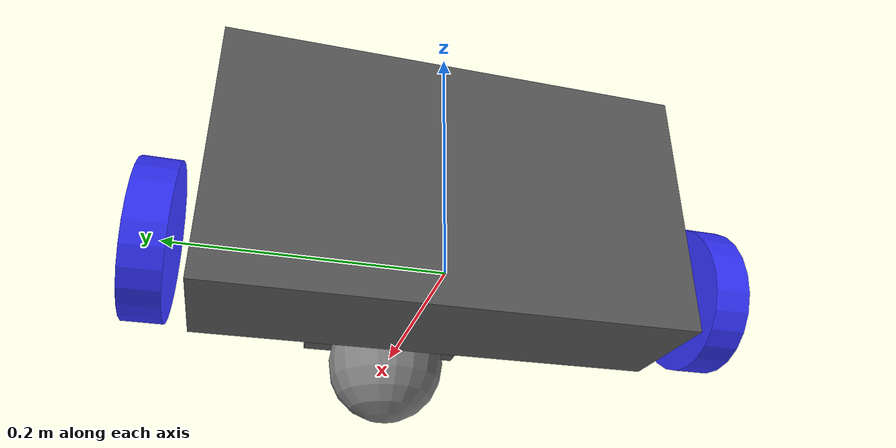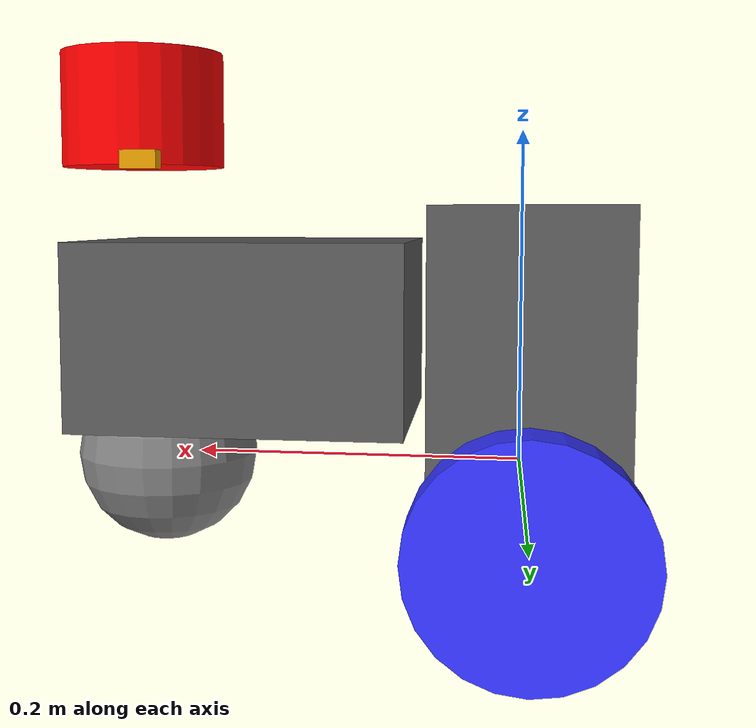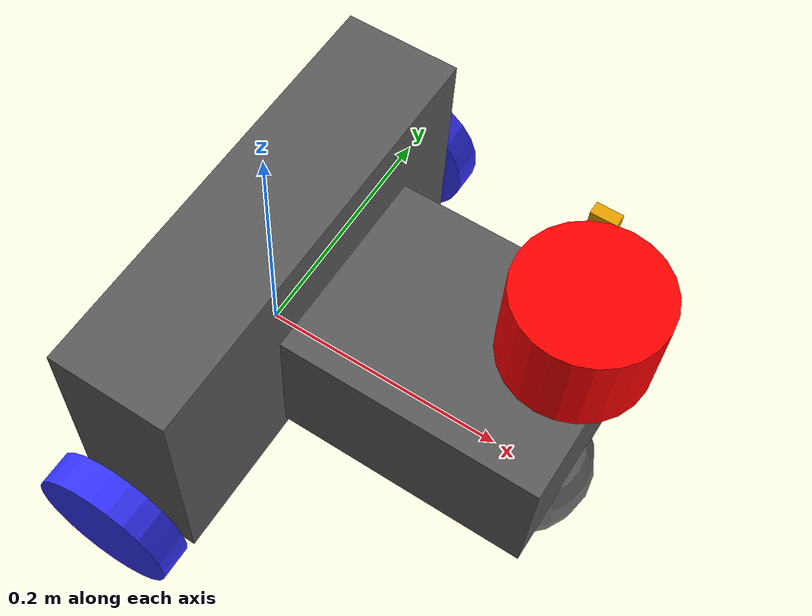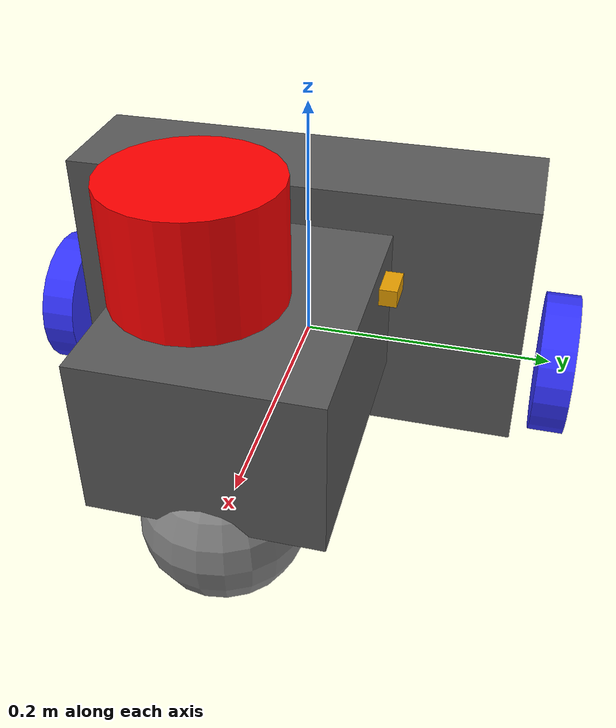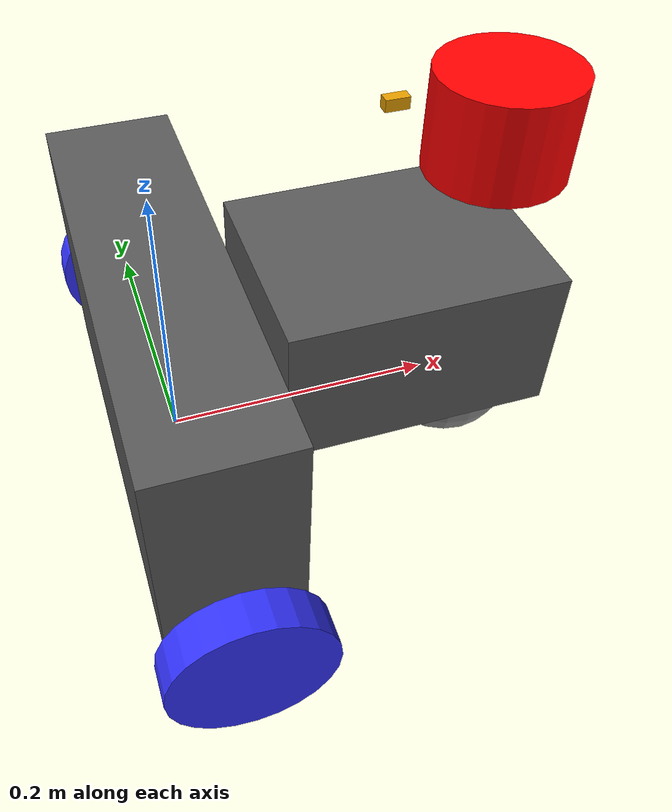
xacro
<?xml version="1.0"?>
<robot xmlns:xacro="http://www.ros.org/wiki/xacro"  name="robot">

    <xacro:arg name="sim_mode" default="false"/>

    <xacro:include filename="robot_core.xacro" />
    <xacro:include filename="ros2_control.xacro" />

    <!-- Plugin gazebo_ros2_control solo en simulación -->
    <xacro:if value="$(arg sim_mode)">
        <xacro:include filename="gazebo_control.xacro" />
    </xacro:if>

    <xacro:include filename="lidar.xacro" />
    <xacro:include filename="imu.xacro" />

</robot>

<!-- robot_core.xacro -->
<robot xmlns:xacro="http://www.ros.org/wiki/xacro" >

    <xacro:include filename="inertial_macros.xacro"/>

    <!-- Gazebo Fortress mapea (URDF-SDF) colores a diffuse/ambient -->

    <!-- BASE LINK -->

    <link name="base_link">

    </link>

    <!-- BASE_FOOTPRINT LINK -->

    <joint name="base_footprint_joint" type="fixed">
        <parent link="base_link"/>
        <child link="base_footprint"/>
        <origin xyz="0 0 0" rpy="0 0 0"/>
    </joint>

    <link name="base_footprint">
    </link>

    <!-- CHASSIS LINK -->

    <joint name="chassis1_joint" type="fixed">
        <parent link="base_link"/>
        <child link="chassis1"/>
        <origin xyz="-0.047 0 -0.046"/>
    </joint>

    <link name="chassis1">
        <visual>
            <origin xyz="0.047 0 0.1"/>
            <geometry>
                <box size="0.094 0.354 0.2"/>
            </geometry>
            <material name="gray">
                <color rgba="0.35 0.35 0.35 1"/>
            </material>
        </visual>
        <collision>
            <origin xyz="0.047 0 0.1"/>
            <geometry>
                <box size="0.094 0.354 0.2"/>
            </geometry>
        </collision>
        <xacro:inertial_box mass="0.6" x="0.094" y="0.354" z="0.2">
            <origin xyz="0.05 0 0.1" rpy="0 0 0"/>
        </xacro:inertial_box>
    </link>

    <joint name="chassis2_joint" type="fixed">
        <parent link="base_link"/>
        <child link="chassis2"/>
        <origin xyz="0.065 0 0.024"/>
    </joint>

    <link name="chassis2">
        <visual>
            <origin xyz="0.098 0 0.055"/>
            <geometry>
                <box size="0.196 0.156 0.11"/>
            </geometry>
            <material name="gray">
                <color rgba="0.35 0.35 0.35 1"/>
            </material>
        </visual>
        <collision>
            <origin xyz="0.098 0 0.055"/>
            <geometry>
                <box size="0.22 0.22 0.12"/>
            </geometry>
        </collision>
        <xacro:inertial_box mass="0.4" x="0.22" y="0.22" z="0.12">
            <origin xyz="0.098 0 0.055" rpy="0 0 0"/>
        </xacro:inertial_box>
    </link>

    <!-- LEFT WHEEL LINK -->

    <joint name="left_wheel_joint" type="continuous">
        <parent link="base_link"/>
        <child link="left_wheel"/>
        <origin xyz="0 0.204 0" rpy="-${pi/2} 0 0" />
        <axis xyz="0 0 1"/>
    </joint>

    <link name="left_wheel">
        <visual>
            <geometry>
                <cylinder radius="0.056" length="0.027"/>
            </geometry>
            <material name="blue">
                <color rgba="0.2 0.2 1 1"/>
            </material>
        </visual>
        <collision>
            <geometry>
                <cylinder radius="0.056" length="0.027"/>
            </geometry>
        </collision>
        <xacro:inertial_cylinder mass="0.05" length="0.027" radius="0.056">
            <origin xyz="0 0 0" rpy="0 0 0"/>
        </xacro:inertial_cylinder>
    </link>

    <!-- RIGHT WHEEL LINK -->

    <joint name="right_wheel_joint" type="continuous">
        <parent link="base_link"/>
        <child link="right_wheel"/>
        <origin xyz="0 -0.204 0" rpy="${pi/2} 0 0" />
        <axis xyz="0 0 -1"/>
    </joint>

    <link name="right_wheel">
        <visual>
            <geometry>
                <cylinder radius="0.056" length="0.027"/>
            </geometry>
            <material name="blue">
                <color rgba="0.2 0.2 1 1"/>
            </material>
        </visual>
        <collision>
            <geometry>
                <cylinder radius="0.056" length="0.027"/>
            </geometry>
        </collision>
        <xacro:inertial_cylinder mass="0.05" length="0.027" radius="0.056">
            <origin xyz="0 0 0" rpy="0 0 0"/>
        </xacro:inertial_cylinder>
    </link>

    <!-- CASTER WHEEL LINK -->

    <joint name="caster_wheel_joint" type="fixed">
        <parent link="chassis2"/>
        <child link="caster_wheel"/>
        <origin xyz="0.156 0 -0.024"/>
    </joint>

    <link name="caster_wheel">
        <visual>
            <geometry>
                <sphere radius="0.056"/>
            </geometry>
            <material name="white">
                <color rgba="0.5 0.5 0.5 1"/>
            </material>
        </visual>
        <collision>
            <geometry>
                <sphere radius="0.056"/>
            </geometry>
        </collision>
        <xacro:inertial_sphere mass="0.02" radius="0.056">
            <origin xyz="0 0 0" rpy="0 0 0"/>
        </xacro:inertial_sphere>
    </link>

    <gazebo reference="caster_wheel">
        <mu1>0.001</mu1>
        <mu2>0.001</mu2>
    </gazebo>

</robot>

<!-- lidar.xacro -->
<robot xmlns:xacro="http://www.ros.org/wiki/xacro" >

    <material name="red">
        <color rgba="1 0 0 1"/>
    </material>

    <joint name="laser_joint" type="fixed">
        <parent link="chassis2"/>
        <child link="laser_frame"/>
        <origin xyz="0.17 0 0.19" rpy="0 0 0"/>
    </joint>

    <link name="laser_frame">
        <visual>
            <geometry>
                <cylinder radius="0.05" length="0.07"/>
            </geometry>
            <material name="red"/>
        </visual>
        <xacro:inertial_cylinder mass="0.1" length="0.07" radius="0.05">
            <origin xyz="0 0 0" rpy="0 0 0"/>
        </xacro:inertial_cylinder>
    </link>

    <gazebo reference="laser_frame">
        <sensor name="laser" type="gpu_lidar">
            <pose>0 0 0 0 0 0</pose>
            <topic>scan</topic>
            <ignition_frame_id>laser_frame</ignition_frame_id>
            <update_rate>7</update_rate>
            <always_on>1</always_on>
            <visualize>true</visualize>
            <lidar>
                <scan>
                    <horizontal>
                        <samples>360</samples>
                        <min_angle>-3.14159</min_angle>
                        <max_angle>3.14159</max_angle>
                    </horizontal>
                </scan>
                <range>
                    <min>0.16</min>
                    <max>6.0</max>
                </range>
            </lidar>
        </sensor>
    </gazebo>

</robot>

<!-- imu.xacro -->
<robot xmlns:xacro="http://www.ros.org/wiki/xacro" >

    <joint name="imu_joint" type="fixed">
        <parent link="chassis2"/>
        <child link="imu_frame"/>
        <origin xyz="0.14 0.1 0.155" rpy="0 0 0"/>
    </joint>

    <link name="imu_frame">
        <visual>
            <geometry>
                <box size="0.02 0.01 0.01"/>
            </geometry>
            <color rgba="1 0 0 1"/>
        </visual>
        <xacro:inertial_box mass="0.1" x="0.02" y="0.01" z="0.01">
            <origin xyz="0.14 0.1 0.155" rpy="0 0 0"/>
        </xacro:inertial_box>
    </link>

    <gazebo reference="imu_frame">
        <sensor name="imu_sensor" type="imu">
            <topic>imu/data_raw</topic>
            <ignition_frame_id>imu_frame</ignition_frame_id>
            <update_rate>100</update_rate>
            <always_on>1</always_on>
        </sensor>
    </gazebo>

</robot>
